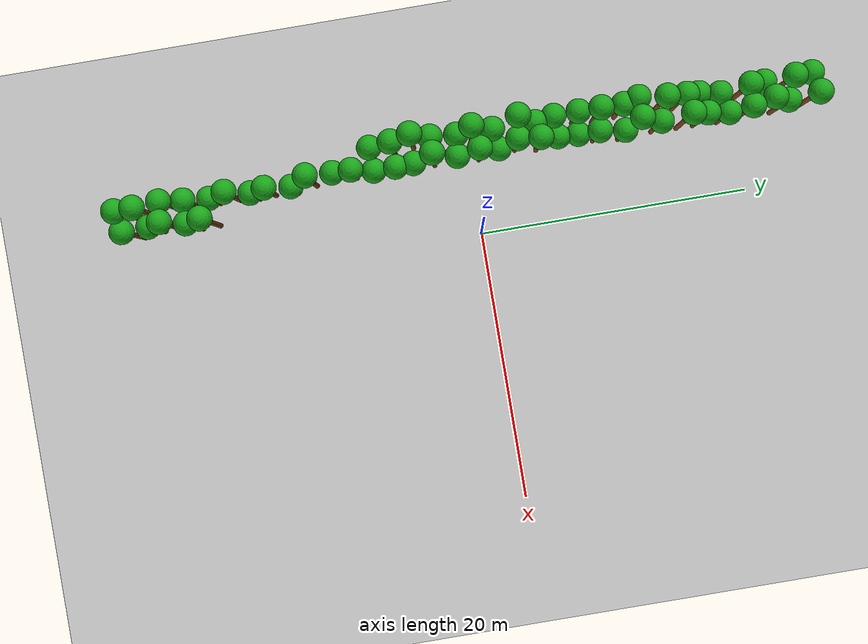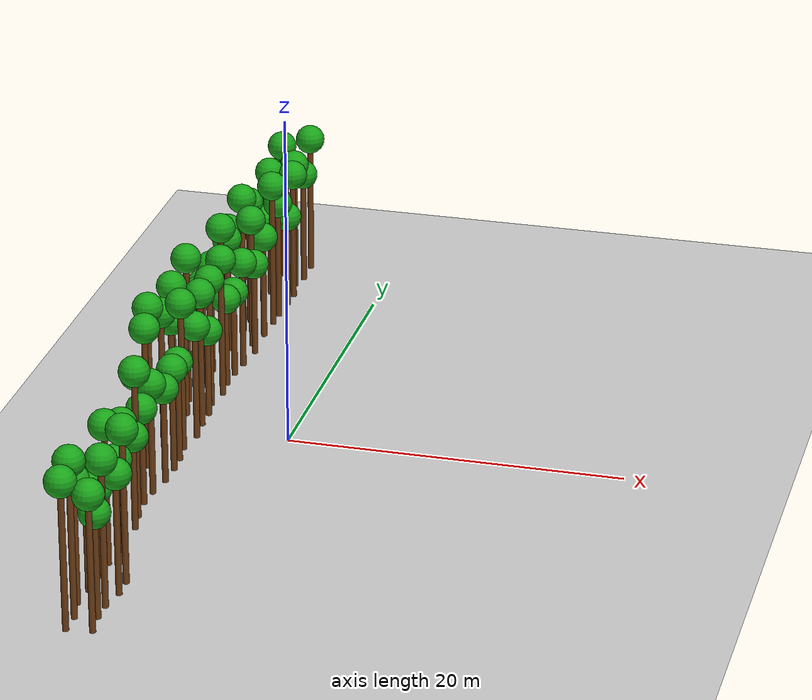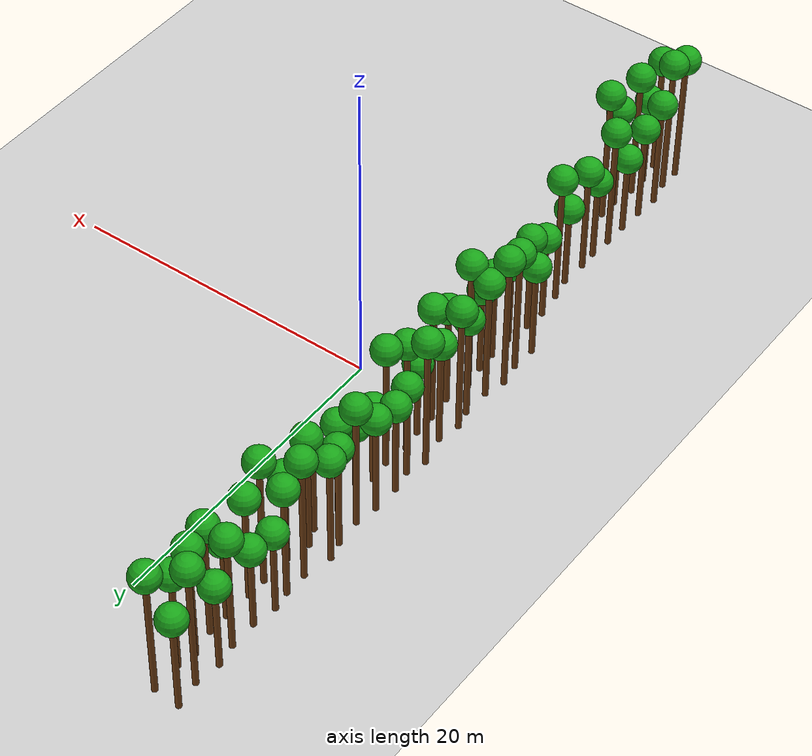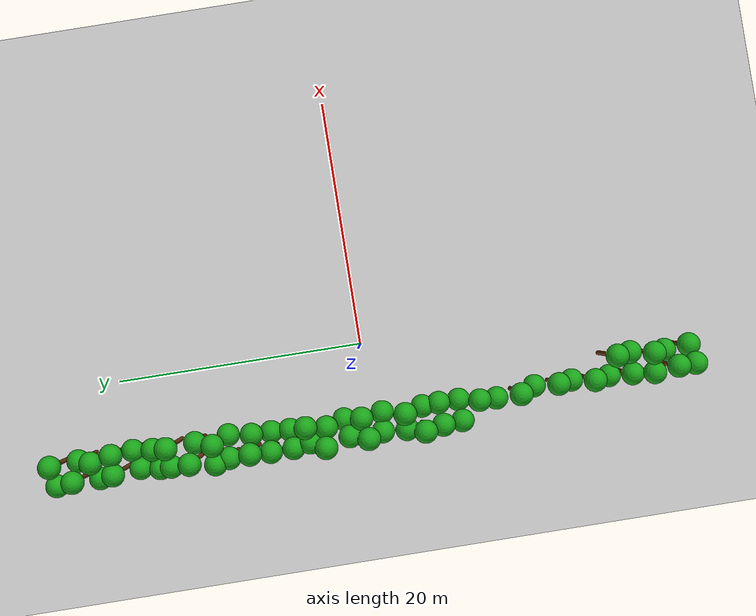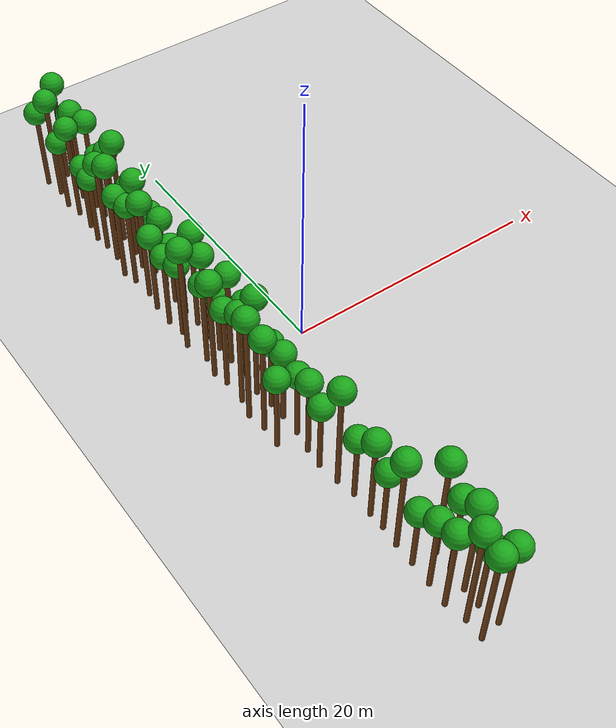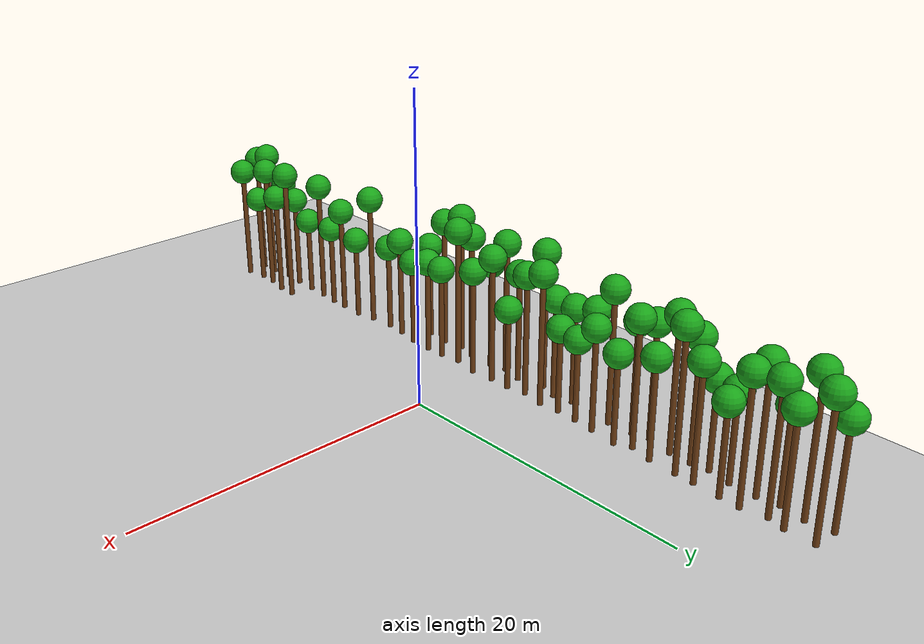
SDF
<sdf version="1.6">
 <world name="forest_world">
  <include><uri>model://sun</uri></include>
  <include><uri>model://ground_plane</uri></include>
  <model name="tree_420">
   <static>true</static>
   <link name="trunk">
    <collision name="collision">
     <pose>-6.99 -6.97 3.08 0 0 0</pose>
     <geometry><cylinder><radius>0.18</radius><length>6.15</length></cylinder></geometry>
    </collision>
    <visual name="trunk_visual">
     <pose>-6.99 -6.97 3.08 0 0 0</pose>
     <geometry><cylinder><radius>0.18</radius><length>6.15</length></cylinder></geometry>
     <material><ambient>0.35 0.20 0.05 1</ambient><diffuse>0.45 0.25 0.08 1</diffuse></material>
    </visual>
    <visual name="leaf_visual">
     <pose>-6.99 -6.97 6.60 0 0 0</pose>
     <geometry><sphere><radius>0.9</radius></sphere></geometry>
     <material><ambient>0.05 0.45 0.05 1</ambient><diffuse>0.10 0.65 0.10 1</diffuse></material>
    </visual>
   </link>
  </model>
  <model name="tree_421">
   <static>true</static>
   <link name="trunk">
    <collision name="collision">
     <pose>-6.91 -5.38 4.17 0 0 0</pose>
     <geometry><cylinder><radius>0.18</radius><length>8.34</length></cylinder></geometry>
    </collision>
    <visual name="trunk_visual">
     <pose>-6.91 -5.38 4.17 0 0 0</pose>
     <geometry><cylinder><radius>0.18</radius><length>8.34</length></cylinder></geometry>
     <material><ambient>0.35 0.20 0.05 1</ambient><diffuse>0.45 0.25 0.08 1</diffuse></material>
    </visual>
    <visual name="leaf_visual">
     <pose>-6.91 -5.38 8.79 0 0 0</pose>
     <geometry><sphere><radius>0.9</radius></sphere></geometry>
     <material><ambient>0.05 0.45 0.05 1</ambient><diffuse>0.10 0.65 0.10 1</diffuse></material>
    </visual>
   </link>
  </model>
  <model name="tree_422">
   <static>true</static>
   <link name="trunk">
    <collision name="collision">
     <pose>-7.15 -3.96 4.49 0 0 0</pose>
     <geometry><cylinder><radius>0.18</radius><length>8.99</length></cylinder></geometry>
    </collision>
    <visual name="trunk_visual">
     <pose>-7.15 -3.96 4.49 0 0 0</pose>
     <geometry><cylinder><radius>0.18</radius><length>8.99</length></cylinder></geometry>
     <material><ambient>0.35 0.20 0.05 1</ambient><diffuse>0.45 0.25 0.08 1</diffuse></material>
    </visual>
    <visual name="leaf_visual">
     <pose>-7.15 -3.96 9.44 0 0 0</pose>
     <geometry><sphere><radius>0.9</radius></sphere></geometry>
     <material><ambient>0.05 0.45 0.05 1</ambient><diffuse>0.10 0.65 0.10 1</diffuse></material>
    </visual>
   </link>
  </model>
  <model name="tree_423">
   <static>true</static>
   <link name="trunk">
    <collision name="collision">
     <pose>-6.81 -2.60 4.06 0 0 0</pose>
     <geometry><cylinder><radius>0.18</radius><length>8.12</length></cylinder></geometry>
    </collision>
    <visual name="trunk_visual">
     <pose>-6.81 -2.60 4.06 0 0 0</pose>
     <geometry><cylinder><radius>0.18</radius><length>8.12</length></cylinder></geometry>
     <material><ambient>0.35 0.20 0.05 1</ambient><diffuse>0.45 0.25 0.08 1</diffuse></material>
    </visual>
    <visual name="leaf_visual">
     <pose>-6.81 -2.60 8.57 0 0 0</pose>
     <geometry><sphere><radius>0.9</radius></sphere></geometry>
     <material><ambient>0.05 0.45 0.05 1</ambient><diffuse>0.10 0.65 0.10 1</diffuse></material>
    </visual>
   </link>
  </model>
  <model name="tree_424">
   <static>true</static>
   <link name="trunk">
    <collision name="collision">
     <pose>-6.80 -0.76 3.42 0 0 0</pose>
     <geometry><cylinder><radius>0.18</radius><length>6.84</length></cylinder></geometry>
    </collision>
    <visual name="trunk_visual">
     <pose>-6.80 -0.76 3.42 0 0 0</pose>
     <geometry><cylinder><radius>0.18</radius><length>6.84</length></cylinder></geometry>
     <material><ambient>0.35 0.20 0.05 1</ambient><diffuse>0.45 0.25 0.08 1</diffuse></material>
    </visual>
    <visual name="leaf_visual">
     <pose>-6.80 -0.76 7.29 0 0 0</pose>
     <geometry><sphere><radius>0.9</radius></sphere></geometry>
     <material><ambient>0.05 0.45 0.05 1</ambient><diffuse>0.10 0.65 0.10 1</diffuse></material>
    </visual>
   </link>
  </model>
  <model name="tree_425">
   <static>true</static>
   <link name="trunk">
    <collision name="collision">
     <pose>-7.07 0.37 4.25 0 0 0</pose>
     <geometry><cylinder><radius>0.18</radius><length>8.49</length></cylinder></geometry>
    </collision>
    <visual name="trunk_visual">
     <pose>-7.07 0.37 4.25 0 0 0</pose>
     <geometry><cylinder><radius>0.18</radius><length>8.49</length></cylinder></geometry>
     <material><ambient>0.35 0.20 0.05 1</ambient><diffuse>0.45 0.25 0.08 1</diffuse></material>
    </visual>
    <visual name="leaf_visual">
     <pose>-7.07 0.37 8.94 0 0 0</pose>
     <geometry><sphere><radius>0.9</radius></sphere></geometry>
     <material><ambient>0.05 0.45 0.05 1</ambient><diffuse>0.10 0.65 0.10 1</diffuse></material>
    </visual>
   </link>
  </model>
  <model name="tree_426">
   <static>true</static>
   <link name="trunk">
    <collision name="collision">
     <pose>-6.77 1.81 3.48 0 0 0</pose>
     <geometry><cylinder><radius>0.18</radius><length>6.97</length></cylinder></geometry>
    </collision>
    <visual name="trunk_visual">
     <pose>-6.77 1.81 3.48 0 0 0</pose>
     <geometry><cylinder><radius>0.18</radius><length>6.97</length></cylinder></geometry>
     <material><ambient>0.35 0.20 0.05 1</ambient><diffuse>0.45 0.25 0.08 1</diffuse></material>
    </visual>
    <visual name="leaf_visual">
     <pose>-6.77 1.81 7.42 0 0 0</pose>
     <geometry><sphere><radius>0.9</radius></sphere></geometry>
     <material><ambient>0.05 0.45 0.05 1</ambient><diffuse>0.10 0.65 0.10 1</diffuse></material>
    </visual>
   </link>
  </model>
  <model name="tree_427">
   <static>true</static>
   <link name="trunk">
    <collision name="collision">
     <pose>-7.20 3.66 4.42 0 0 0</pose>
     <geometry><cylinder><radius>0.18</radius><length>8.84</length></cylinder></geometry>
    </collision>
    <visual name="trunk_visual">
     <pose>-7.20 3.66 4.42 0 0 0</pose>
     <geometry><cylinder><radius>0.18</radius><length>8.84</length></cylinder></geometry>
     <material><ambient>0.35 0.20 0.05 1</ambient><diffuse>0.45 0.25 0.08 1</diffuse></material>
    </visual>
    <visual name="leaf_visual">
     <pose>-7.20 3.66 9.29 0 0 0</pose>
     <geometry><sphere><radius>0.9</radius></sphere></geometry>
     <material><ambient>0.05 0.45 0.05 1</ambient><diffuse>0.10 0.65 0.10 1</diffuse></material>
    </visual>
   </link>
  </model>
  <model name="tree_428">
   <static>true</static>
   <link name="trunk">
    <collision name="collision">
     <pose>-6.82 4.91 3.13 0 0 0</pose>
     <geometry><cylinder><radius>0.18</radius><length>6.25</length></cylinder></geometry>
    </collision>
    <visual name="trunk_visual">
     <pose>-6.82 4.91 3.13 0 0 0</pose>
     <geometry><cylinder><radius>0.18</radius><length>6.25</length></cylinder></geometry>
     <material><ambient>0.35 0.20 0.05 1</ambient><diffuse>0.45 0.25 0.08 1</diffuse></material>
    </visual>
    <visual name="leaf_visual">
     <pose>-6.82 4.91 6.70 0 0 0</pose>
     <geometry><sphere><radius>0.9</radius></sphere></geometry>
     <material><ambient>0.05 0.45 0.05 1</ambient><diffuse>0.10 0.65 0.10 1</diffuse></material>
    </visual>
   </link>
  </model>
  <model name="tree_429">
   <static>true</static>
   <link name="trunk">
    <collision name="collision">
     <pose>-7.06 6.28 3.04 0 0 0</pose>
     <geometry><cylinder><radius>0.18</radius><length>6.08</length></cylinder></geometry>
    </collision>
    <visual name="trunk_visual">
     <pose>-7.06 6.28 3.04 0 0 0</pose>
     <geometry><cylinder><radius>0.18</radius><length>6.08</length></cylinder></geometry>
     <material><ambient>0.35 0.20 0.05 1</ambient><diffuse>0.45 0.25 0.08 1</diffuse></material>
    </visual>
    <visual name="leaf_visual">
     <pose>-7.06 6.28 6.53 0 0 0</pose>
     <geometry><sphere><radius>0.9</radius></sphere></geometry>
     <material><ambient>0.05 0.45 0.05 1</ambient><diffuse>0.10 0.65 0.10 1</diffuse></material>
    </visual>
   </link>
  </model>
  <model name="tree_430">
   <static>true</static>
   <link name="trunk">
    <collision name="collision">
     <pose>-7.03 8.02 3.27 0 0 0</pose>
     <geometry><cylinder><radius>0.18</radius><length>6.54</length></cylinder></geometry>
    </collision>
    <visual name="trunk_visual">
     <pose>-7.03 8.02 3.27 0 0 0</pose>
     <geometry><cylinder><radius>0.18</radius><length>6.54</length></cylinder></geometry>
     <material><ambient>0.35 0.20 0.05 1</ambient><diffuse>0.45 0.25 0.08 1</diffuse></material>
    </visual>
    <visual name="leaf_visual">
     <pose>-7.03 8.02 6.99 0 0 0</pose>
     <geometry><sphere><radius>0.9</radius></sphere></geometry>
     <material><ambient>0.05 0.45 0.05 1</ambient><diffuse>0.10 0.65 0.10 1</diffuse></material>
    </visual>
   </link>
  </model>
  <model name="tree_431">
   <static>true</static>
   <link name="trunk">
    <collision name="collision">
     <pose>-6.81 9.47 4.21 0 0 0</pose>
     <geometry><cylinder><radius>0.18</radius><length>8.41</length></cylinder></geometry>
    </collision>
    <visual name="trunk_visual">
     <pose>-6.81 9.47 4.21 0 0 0</pose>
     <geometry><cylinder><radius>0.18</radius><length>8.41</length></cylinder></geometry>
     <material><ambient>0.35 0.20 0.05 1</ambient><diffuse>0.45 0.25 0.08 1</diffuse></material>
    </visual>
    <visual name="leaf_visual">
     <pose>-6.81 9.47 8.86 0 0 0</pose>
     <geometry><sphere><radius>0.9</radius></sphere></geometry>
     <material><ambient>0.05 0.45 0.05 1</ambient><diffuse>0.10 0.65 0.10 1</diffuse></material>
    </visual>
   </link>
  </model>
  <model name="tree_432">
   <static>true</static>
   <link name="trunk">
    <collision name="collision">
     <pose>-6.95 11.20 3.48 0 0 0</pose>
     <geometry><cylinder><radius>0.18</radius><length>6.97</length></cylinder></geometry>
    </collision>
    <visual name="trunk_visual">
     <pose>-6.95 11.20 3.48 0 0 0</pose>
     <geometry><cylinder><radius>0.18</radius><length>6.97</length></cylinder></geometry>
     <material><ambient>0.35 0.20 0.05 1</ambient><diffuse>0.45 0.25 0.08 1</diffuse></material>
    </visual>
    <visual name="leaf_visual">
     <pose>-6.95 11.20 7.42 0 0 0</pose>
     <geometry><sphere><radius>0.9</radius></sphere></geometry>
     <material><ambient>0.05 0.45 0.05 1</ambient><diffuse>0.10 0.65 0.10 1</diffuse></material>
    </visual>
   </link>
  </model>
  <model name="tree_433">
   <static>true</static>
   <link name="trunk">
    <collision name="collision">
     <pose>-7.24 12.29 3.59 0 0 0</pose>
     <geometry><cylinder><radius>0.18</radius><length>7.19</length></cylinder></geometry>
    </collision>
    <visual name="trunk_visual">
     <pose>-7.24 12.29 3.59 0 0 0</pose>
     <geometry><cylinder><radius>0.18</radius><length>7.19</length></cylinder></geometry>
     <material><ambient>0.35 0.20 0.05 1</ambient><diffuse>0.45 0.25 0.08 1</diffuse></material>
    </visual>
    <visual name="leaf_visual">
     <pose>-7.24 12.29 7.64 0 0 0</pose>
     <geometry><sphere><radius>0.9</radius></sphere></geometry>
     <material><ambient>0.05 0.45 0.05 1</ambient><diffuse>0.10 0.65 0.10 1</diffuse></material>
    </visual>
   </link>
  </model>
  <model name="tree_434">
   <static>true</static>
   <link name="trunk">
    <collision name="collision">
     <pose>-6.84 14.10 4.23 0 0 0</pose>
     <geometry><cylinder><radius>0.18</radius><length>8.46</length></cylinder></geometry>
    </collision>
    <visual name="trunk_visual">
     <pose>-6.84 14.10 4.23 0 0 0</pose>
     <geometry><cylinder><radius>0.18</radius><length>8.46</length></cylinder></geometry>
     <material><ambient>0.35 0.20 0.05 1</ambient><diffuse>0.45 0.25 0.08 1</diffuse></material>
    </visual>
    <visual name="leaf_visual">
     <pose>-6.84 14.10 8.91 0 0 0</pose>
     <geometry><sphere><radius>0.9</radius></sphere></geometry>
     <material><ambient>0.05 0.45 0.05 1</ambient><diffuse>0.10 0.65 0.10 1</diffuse></material>
    </visual>
   </link>
  </model>
  <model name="tree_435">
   <static>true</static>
   <link name="trunk">
    <collision name="collision">
     <pose>-6.84 15.59 3.82 0 0 0</pose>
     <geometry><cylinder><radius>0.18</radius><length>7.64</length></cylinder></geometry>
    </collision>
    <visual name="trunk_visual">
     <pose>-6.84 15.59 3.82 0 0 0</pose>
     <geometry><cylinder><radius>0.18</radius><length>7.64</length></cylinder></geometry>
     <material><ambient>0.35 0.20 0.05 1</ambient><diffuse>0.45 0.25 0.08 1</diffuse></material>
    </visual>
    <visual name="leaf_visual">
     <pose>-6.84 15.59 8.09 0 0 0</pose>
     <geometry><sphere><radius>0.9</radius></sphere></geometry>
     <material><ambient>0.05 0.45 0.05 1</ambient><diffuse>0.10 0.65 0.10 1</diffuse></material>
    </visual>
   </link>
  </model>
  <model name="tree_436">
   <static>true</static>
   <link name="trunk">
    <collision name="collision">
     <pose>-7.01 16.77 2.76 0 0 0</pose>
     <geometry><cylinder><radius>0.18</radius><length>5.52</length></cylinder></geometry>
    </collision>
    <visual name="trunk_visual">
     <pose>-7.01 16.77 2.76 0 0 0</pose>
     <geometry><cylinder><radius>0.18</radius><length>5.52</length></cylinder></geometry>
     <material><ambient>0.35 0.20 0.05 1</ambient><diffuse>0.45 0.25 0.08 1</diffuse></material>
    </visual>
    <visual name="leaf_visual">
     <pose>-7.01 16.77 5.97 0 0 0</pose>
     <geometry><sphere><radius>0.9</radius></sphere></geometry>
     <material><ambient>0.05 0.45 0.05 1</ambient><diffuse>0.10 0.65 0.10 1</diffuse></material>
    </visual>
   </link>
  </model>
  <model name="tree_437">
   <static>true</static>
   <link name="trunk">
    <collision name="collision">
     <pose>-6.76 18.30 2.73 0 0 0</pose>
     <geometry><cylinder><radius>0.18</radius><length>5.46</length></cylinder></geometry>
    </collision>
    <visual name="trunk_visual">
     <pose>-6.76 18.30 2.73 0 0 0</pose>
     <geometry><cylinder><radius>0.18</radius><length>5.46</length></cylinder></geometry>
     <material><ambient>0.35 0.20 0.05 1</ambient><diffuse>0.45 0.25 0.08 1</diffuse></material>
    </visual>
    <visual name="leaf_visual">
     <pose>-6.76 18.30 5.91 0 0 0</pose>
     <geometry><sphere><radius>0.9</radius></sphere></geometry>
     <material><ambient>0.05 0.45 0.05 1</ambient><diffuse>0.10 0.65 0.10 1</diffuse></material>
    </visual>
   </link>
  </model>
  <model name="tree_438">
   <static>true</static>
   <link name="trunk">
    <collision name="collision">
     <pose>-6.77 20.06 3.93 0 0 0</pose>
     <geometry><cylinder><radius>0.18</radius><length>7.86</length></cylinder></geometry>
    </collision>
    <visual name="trunk_visual">
     <pose>-6.77 20.06 3.93 0 0 0</pose>
     <geometry><cylinder><radius>0.18</radius><length>7.86</length></cylinder></geometry>
     <material><ambient>0.35 0.20 0.05 1</ambient><diffuse>0.45 0.25 0.08 1</diffuse></material>
    </visual>
    <visual name="leaf_visual">
     <pose>-6.77 20.06 8.31 0 0 0</pose>
     <geometry><sphere><radius>0.9</radius></sphere></geometry>
     <material><ambient>0.05 0.45 0.05 1</ambient><diffuse>0.10 0.65 0.10 1</diffuse></material>
    </visual>
   </link>
  </model>
  <model name="tree_439">
   <static>true</static>
   <link name="trunk">
    <collision name="collision">
     <pose>-7.02 21.43 2.89 0 0 0</pose>
     <geometry><cylinder><radius>0.18</radius><length>5.79</length></cylinder></geometry>
    </collision>
    <visual name="trunk_visual">
     <pose>-7.02 21.43 2.89 0 0 0</pose>
     <geometry><cylinder><radius>0.18</radius><length>5.79</length></cylinder></geometry>
     <material><ambient>0.35 0.20 0.05 1</ambient><diffuse>0.45 0.25 0.08 1</diffuse></material>
    </visual>
    <visual name="leaf_visual">
     <pose>-7.02 21.43 6.24 0 0 0</pose>
     <geometry><sphere><radius>0.9</radius></sphere></geometry>
     <material><ambient>0.05 0.45 0.05 1</ambient><diffuse>0.10 0.65 0.10 1</diffuse></material>
    </visual>
   </link>
  </model>
  <model name="tree_440">
   <static>true</static>
   <link name="trunk">
    <collision name="collision">
     <pose>-6.79 23.06 4.23 0 0 0</pose>
     <geometry><cylinder><radius>0.18</radius><length>8.46</length></cylinder></geometry>
    </collision>
    <visual name="trunk_visual">
     <pose>-6.79 23.06 4.23 0 0 0</pose>
     <geometry><cylinder><radius>0.18</radius><length>8.46</length></cylinder></geometry>
     <material><ambient>0.35 0.20 0.05 1</ambient><diffuse>0.45 0.25 0.08 1</diffuse></material>
    </visual>
    <visual name="leaf_visual">
     <pose>-6.79 23.06 8.91 0 0 0</pose>
     <geometry><sphere><radius>0.9</radius></sphere></geometry>
     <material><ambient>0.05 0.45 0.05 1</ambient><diffuse>0.10 0.65 0.10 1</diffuse></material>
    </visual>
   </link>
  </model>
  <model name="tree_441">
   <static>true</static>
   <link name="trunk">
    <collision name="collision">
     <pose>-7.03 24.71 3.21 0 0 0</pose>
     <geometry><cylinder><radius>0.18</radius><length>6.42</length></cylinder></geometry>
    </collision>
    <visual name="trunk_visual">
     <pose>-7.03 24.71 3.21 0 0 0</pose>
     <geometry><cylinder><radius>0.18</radius><length>6.42</length></cylinder></geometry>
     <material><ambient>0.35 0.20 0.05 1</ambient><diffuse>0.45 0.25 0.08 1</diffuse></material>
    </visual>
    <visual name="leaf_visual">
     <pose>-7.03 24.71 6.87 0 0 0</pose>
     <geometry><sphere><radius>0.9</radius></sphere></geometry>
     <material><ambient>0.05 0.45 0.05 1</ambient><diffuse>0.10 0.65 0.10 1</diffuse></material>
    </visual>
   </link>
  </model>
  <model name="tree_442">
   <static>true</static>
   <link name="trunk">
    <collision name="collision">
     <pose>-5.30 -25.02 4.20 0 0 0</pose>
     <geometry><cylinder><radius>0.18</radius><length>8.41</length></cylinder></geometry>
    </collision>
    <visual name="trunk_visual">
     <pose>-5.30 -25.02 4.20 0 0 0</pose>
     <geometry><cylinder><radius>0.18</radius><length>8.41</length></cylinder></geometry>
     <material><ambient>0.35 0.20 0.05 1</ambient><diffuse>0.45 0.25 0.08 1</diffuse></material>
    </visual>
    <visual name="leaf_visual">
     <pose>-5.30 -25.02 8.86 0 0 0</pose>
     <geometry><sphere><radius>0.9</radius></sphere></geometry>
     <material><ambient>0.05 0.45 0.05 1</ambient><diffuse>0.10 0.65 0.10 1</diffuse></material>
    </visual>
   </link>
  </model>
  <model name="tree_443">
   <static>true</static>
   <link name="trunk">
    <collision name="collision">
     <pose>-5.28 -23.63 4.47 0 0 0</pose>
     <geometry><cylinder><radius>0.18</radius><length>8.94</length></cylinder></geometry>
    </collision>
    <visual name="trunk_visual">
     <pose>-5.28 -23.63 4.47 0 0 0</pose>
     <geometry><cylinder><radius>0.18</radius><length>8.94</length></cylinder></geometry>
     <material><ambient>0.35 0.20 0.05 1</ambient><diffuse>0.45 0.25 0.08 1</diffuse></material>
    </visual>
    <visual name="leaf_visual">
     <pose>-5.28 -23.63 9.39 0 0 0</pose>
     <geometry><sphere><radius>0.9</radius></sphere></geometry>
     <material><ambient>0.05 0.45 0.05 1</ambient><diffuse>0.10 0.65 0.10 1</diffuse></material>
    </visual>
   </link>
  </model>
  <model name="tree_444">
   <static>true</static>
   <link name="trunk">
    <collision name="collision">
     <pose>-5.61 -22.11 3.53 0 0 0</pose>
     <geometry><cylinder><radius>0.18</radius><length>7.06</length></cylinder></geometry>
    </collision>
    <visual name="trunk_visual">
     <pose>-5.61 -22.11 3.53 0 0 0</pose>
     <geometry><cylinder><radius>0.18</radius><length>7.06</length></cylinder></geometry>
     <material><ambient>0.35 0.20 0.05 1</ambient><diffuse>0.45 0.25 0.08 1</diffuse></material>
    </visual>
    <visual name="leaf_visual">
     <pose>-5.61 -22.11 7.51 0 0 0</pose>
     <geometry><sphere><radius>0.9</radius></sphere></geometry>
     <material><ambient>0.05 0.45 0.05 1</ambient><diffuse>0.10 0.65 0.10 1</diffuse></material>
    </visual>
   </link>
  </model>
  <model name="tree_445">
   <static>true</static>
   <link name="trunk">
    <collision name="collision">
     <pose>-5.49 -20.55 3.10 0 0 0</pose>
     <geometry><cylinder><radius>0.18</radius><length>6.21</length></cylinder></geometry>
    </collision>
    <visual name="trunk_visual">
     <pose>-5.49 -20.55 3.10 0 0 0</pose>
     <geometry><cylinder><radius>0.18</radius><length>6.21</length></cylinder></geometry>
     <material><ambient>0.35 0.20 0.05 1</ambient><diffuse>0.45 0.25 0.08 1</diffuse></material>
    </visual>
    <visual name="leaf_visual">
     <pose>-5.49 -20.55 6.66 0 0 0</pose>
     <geometry><sphere><radius>0.9</radius></sphere></geometry>
     <material><ambient>0.05 0.45 0.05 1</ambient><diffuse>0.10 0.65 0.10 1</diffuse></material>
    </visual>
   </link>
  </model>
  <model name="tree_446">
   <static>true</static>
   <link name="trunk">
    <collision name="collision">
     <pose>-5.43 -18.89 2.52 0 0 0</pose>
     <geometry><cylinder><radius>0.18</radius><length>5.04</length></cylinder></geometry>
    </collision>
    <visual name="trunk_visual">
     <pose>-5.43 -18.89 2.52 0 0 0</pose>
     <geometry><cylinder><radius>0.18</radius><length>5.04</length></cylinder></geometry>
     <material><ambient>0.35 0.20 0.05 1</ambient><diffuse>0.45 0.25 0.08 1</diffuse></material>
    </visual>
    <visual name="leaf_visual">
     <pose>-5.43 -18.89 5.49 0 0 0</pose>
     <geometry><sphere><radius>0.9</radius></sphere></geometry>
     <material><ambient>0.05 0.45 0.05 1</ambient><diffuse>0.10 0.65 0.10 1</diffuse></material>
    </visual>
   </link>
  </model>
  <model name="tree_447">
   <static>true</static>
   <link name="trunk">
    <collision name="collision">
     <pose>-5.41 -17.34 4.04 0 0 0</pose>
     <geometry><cylinder><radius>0.18</radius><length>8.08</length></cylinder></geometry>
    </collision>
    <visual name="trunk_visual">
     <pose>-5.41 -17.34 4.04 0 0 0</pose>
     <geometry><cylinder><radius>0.18</radius><length>8.08</length></cylinder></geometry>
     <material><ambient>0.35 0.20 0.05 1</ambient><diffuse>0.45 0.25 0.08 1</diffuse></material>
    </visual>
    <visual name="leaf_visual">
     <pose>-5.41 -17.34 8.53 0 0 0</pose>
     <geometry><sphere><radius>0.9</radius></sphere></geometry>
     <material><ambient>0.05 0.45 0.05 1</ambient><diffuse>0.10 0.65 0.10 1</diffuse></material>
    </visual>
   </link>
  </model>
  <model name="tree_448">
   <static>true</static>
   <link name="trunk">
    <collision name="collision">
     <pose>-5.29 -15.89 2.65 0 0 0</pose>
     <geometry><cylinder><radius>0.18</radius><length>5.30</length></cylinder></geometry>
    </collision>
    <visual name="trunk_visual">
     <pose>-5.29 -15.89 2.65 0 0 0</pose>
     <geometry><cylinder><radius>0.18</radius><length>5.30</length></cylinder></geometry>
     <material><ambient>0.35 0.20 0.05 1</ambient><diffuse>0.45 0.25 0.08 1</diffuse></material>
    </visual>
    <visual name="leaf_visual">
     <pose>-5.29 -15.89 5.75 0 0 0</pose>
     <geometry><sphere><radius>0.9</radius></sphere></geometry>
     <material><ambient>0.05 0.45 0.05 1</ambient><diffuse>0.10 0.65 0.10 1</diffuse></material>
    </visual>
   </link>
  </model>
  <model name="tree_449">
   <static>true</static>
   <link name="trunk">
    <collision name="collision">
     <pose>-5.34 -14.68 3.47 0 0 0</pose>
     <geometry><cylinder><radius>0.18</radius><length>6.94</length></cylinder></geometry>
    </collision>
    <visual name="trunk_visual">
     <pose>-5.34 -14.68 3.47 0 0 0</pose>
     <geometry><cylinder><radius>0.18</radius><length>6.94</length></cylinder></geometry>
     <material><ambient>0.35 0.20 0.05 1</ambient><diffuse>0.45 0.25 0.08 1</diffuse></material>
    </visual>
    <visual name="leaf_visual">
     <pose>-5.34 -14.68 7.39 0 0 0</pose>
     <geometry><sphere><radius>0.9</radius></sphere></geometry>
     <material><ambient>0.05 0.45 0.05 1</ambient><diffuse>0.10 0.65 0.10 1</diffuse></material>
    </visual>
   </link>
  </model>
  <model name="tree_450">
   <static>true</static>
   <link name="trunk">
    <collision name="collision">
     <pose>-5.27 -12.94 2.65 0 0 0</pose>
     <geometry><cylinder><radius>0.18</radius><length>5.29</length></cylinder></geometry>
    </collision>
    <visual name="trunk_visual">
     <pose>-5.27 -12.94 2.65 0 0 0</pose>
     <geometry><cylinder><radius>0.18</radius><length>5.29</length></cylinder></geometry>
     <material><ambient>0.35 0.20 0.05 1</ambient><diffuse>0.45 0.25 0.08 1</diffuse></material>
    </visual>
    <visual name="leaf_visual">
     <pose>-5.27 -12.94 5.74 0 0 0</pose>
     <geometry><sphere><radius>0.9</radius></sphere></geometry>
     <material><ambient>0.05 0.45 0.05 1</ambient><diffuse>0.10 0.65 0.10 1</diffuse></material>
    </visual>
   </link>
  </model>
  <model name="tree_451">
   <static>true</static>
   <link name="trunk">
    <collision name="collision">
     <pose>-5.54 -11.55 4.31 0 0 0</pose>
     <geometry><cylinder><radius>0.18</radius><length>8.61</length></cylinder></geometry>
    </collision>
    <visual name="trunk_visual">
     <pose>-5.54 -11.55 4.31 0 0 0</pose>
     <geometry><cylinder><radius>0.18</radius><length>8.61</length></cylinder></geometry>
     <material><ambient>0.35 0.20 0.05 1</ambient><diffuse>0.45 0.25 0.08 1</diffuse></material>
    </visual>
    <visual name="leaf_visual">
     <pose>-5.54 -11.55 9.06 0 0 0</pose>
     <geometry><sphere><radius>0.9</radius></sphere></geometry>
     <material><ambient>0.05 0.45 0.05 1</ambient><diffuse>0.10 0.65 0.10 1</diffuse></material>
    </visual>
   </link>
  </model>
  <model name="tree_452">
   <static>true</static>
   <link name="trunk">
    <collision name="collision">
     <pose>-5.73 -9.88 2.76 0 0 0</pose>
     <geometry><cylinder><radius>0.18</radius><length>5.52</length></cylinder></geometry>
    </collision>
    <visual name="trunk_visual">
     <pose>-5.73 -9.88 2.76 0 0 0</pose>
     <geometry><cylinder><radius>0.18</radius><length>5.52</length></cylinder></geometry>
     <material><ambient>0.35 0.20 0.05 1</ambient><diffuse>0.45 0.25 0.08 1</diffuse></material>
    </visual>
    <visual name="leaf_visual">
     <pose>-5.73 -9.88 5.97 0 0 0</pose>
     <geometry><sphere><radius>0.9</radius></sphere></geometry>
     <material><ambient>0.05 0.45 0.05 1</ambient><diffuse>0.10 0.65 0.10 1</diffuse></material>
    </visual>
   </link>
  </model>
  <model name="tree_453">
   <static>true</static>
   <link name="trunk">
    <collision name="collision">
     <pose>-5.63 -8.49 3.21 0 0 0</pose>
     <geometry><cylinder><radius>0.18</radius><length>6.42</length></cylinder></geometry>
    </collision>
    <visual name="trunk_visual">
     <pose>-5.63 -8.49 3.21 0 0 0</pose>
     <geometry><cylinder><radius>0.18</radius><length>6.42</length></cylinder></geometry>
     <material><ambient>0.35 0.20 0.05 1</ambient><diffuse>0.45 0.25 0.08 1</diffuse></material>
    </visual>
    <visual name="leaf_visual">
     <pose>-5.63 -8.49 6.87 0 0 0</pose>
     <geometry><sphere><radius>0.9</radius></sphere></geometry>
     <material><ambient>0.05 0.45 0.05 1</ambient><diffuse>0.10 0.65 0.10 1</diffuse></material>
    </visual>
   </link>
  </model>
  <model name="tree_454">
   <static>true</static>
   <link name="trunk">
    <collision name="collision">
     <pose>-5.38 -6.92 2.72 0 0 0</pose>
     <geometry><cylinder><radius>0.18</radius><length>5.44</length></cylinder></geometry>
    </collision>
    <visual name="trunk_visual">
     <pose>-5.38 -6.92 2.72 0 0 0</pose>
     <geometry><cylinder><radius>0.18</radius><length>5.44</length></cylinder></geometry>
     <material><ambient>0.35 0.20 0.05 1</ambient><diffuse>0.45 0.25 0.08 1</diffuse></material>
    </visual>
    <visual name="leaf_visual">
     <pose>-5.38 -6.92 5.89 0 0 0</pose>
     <geometry><sphere><radius>0.9</radius></sphere></geometry>
     <material><ambient>0.05 0.45 0.05 1</ambient><diffuse>0.10 0.65 0.10 1</diffuse></material>
    </visual>
   </link>
  </model>
  <model name="tree_455">
   <static>true</static>
   <link name="trunk">
    <collision name="collision">
     <pose>-5.35 -5.33 2.97 0 0 0</pose>
     <geometry><cylinder><radius>0.18</radius><length>5.94</length></cylinder></geometry>
    </collision>
    <visual name="trunk_visual">
     <pose>-5.35 -5.33 2.97 0 0 0</pose>
     <geometry><cylinder><radius>0.18</radius><length>5.94</length></cylinder></geometry>
     <material><ambient>0.35 0.20 0.05 1</ambient><diffuse>0.45 0.25 0.08 1</diffuse></material>
    </visual>
    <visual name="leaf_visual">
     <pose>-5.35 -5.33 6.39 0 0 0</pose>
     <geometry><sphere><radius>0.9</radius></sphere></geometry>
     <material><ambient>0.05 0.45 0.05 1</ambient><diffuse>0.10 0.65 0.10 1</diffuse></material>
    </visual>
   </link>
  </model>
  <model name="tree_456">
   <static>true</static>
   <link name="trunk">
    <collision name="collision">
     <pose>-5.41 -4.04 2.90 0 0 0</pose>
     <geometry><cylinder><radius>0.18</radius><length>5.80</length></cylinder></geometry>
    </collision>
    <visual name="trunk_visual">
     <pose>-5.41 -4.04 2.90 0 0 0</pose>
     <geometry><cylinder><radius>0.18</radius><length>5.80</length></cylinder></geometry>
     <material><ambient>0.35 0.20 0.05 1</ambient><diffuse>0.45 0.25 0.08 1</diffuse></material>
    </visual>
    <visual name="leaf_visual">
     <pose>-5.41 -4.04 6.25 0 0 0</pose>
     <geometry><sphere><radius>0.9</radius></sphere></geometry>
     <material><ambient>0.05 0.45 0.05 1</ambient><diffuse>0.10 0.65 0.10 1</diffuse></material>
    </visual>
   </link>
  </model>
  <model name="tree_457">
   <static>true</static>
   <link name="trunk">
    <collision name="collision">
     <pose>-5.61 -2.61 4.42 0 0 0</pose>
     <geometry><cylinder><radius>0.18</radius><length>8.84</length></cylinder></geometry>
    </collision>
    <visual name="trunk_visual">
     <pose>-5.61 -2.61 4.42 0 0 0</pose>
     <geometry><cylinder><radius>0.18</radius><length>8.84</length></cylinder></geometry>
     <material><ambient>0.35 0.20 0.05 1</ambient><diffuse>0.45 0.25 0.08 1</diffuse></material>
    </visual>
    <visual name="leaf_visual">
     <pose>-5.61 -2.61 9.29 0 0 0</pose>
     <geometry><sphere><radius>0.9</radius></sphere></geometry>
     <material><ambient>0.05 0.45 0.05 1</ambient><diffuse>0.10 0.65 0.10 1</diffuse></material>
    </visual>
   </link>
  </model>
  <model name="tree_458">
   <static>true</static>
   <link name="trunk">
    <collision name="collision">
     <pose>-5.32 -0.90 3.34 0 0 0</pose>
     <geometry><cylinder><radius>0.18</radius><length>6.68</length></cylinder></geometry>
    </collision>
    <visual name="trunk_visual">
     <pose>-5.32 -0.90 3.34 0 0 0</pose>
     <geometry><cylinder><radius>0.18</radius><length>6.68</length></cylinder></geometry>
     <material><ambient>0.35 0.20 0.05 1</ambient><diffuse>0.45 0.25 0.08 1</diffuse></material>
    </visual>
    <visual name="leaf_visual">
     <pose>-5.32 -0.90 7.13 0 0 0</pose>
     <geometry><sphere><radius>0.9</radius></sphere></geometry>
     <material><ambient>0.05 0.45 0.05 1</ambient><diffuse>0.10 0.65 0.10 1</diffuse></material>
    </visual>
   </link>
  </model>
  <model name="tree_459">
   <static>true</static>
   <link name="trunk">
    <collision name="collision">
     <pose>-5.48 0.72 4.02 0 0 0</pose>
     <geometry><cylinder><radius>0.18</radius><length>8.04</length></cylinder></geometry>
    </collision>
    <visual name="trunk_visual">
     <pose>-5.48 0.72 4.02 0 0 0</pose>
     <geometry><cylinder><radius>0.18</radius><length>8.04</length></cylinder></geometry>
     <material><ambient>0.35 0.20 0.05 1</ambient><diffuse>0.45 0.25 0.08 1</diffuse></material>
    </visual>
    <visual name="leaf_visual">
     <pose>-5.48 0.72 8.49 0 0 0</pose>
     <geometry><sphere><radius>0.9</radius></sphere></geometry>
     <material><ambient>0.05 0.45 0.05 1</ambient><diffuse>0.10 0.65 0.10 1</diffuse></material>
    </visual>
   </link>
  </model>
  <model name="tree_460">
   <static>true</static>
   <link name="trunk">
    <collision name="collision">
     <pose>-5.50 2.14 2.51 0 0 0</pose>
     <geometry><cylinder><radius>0.18</radius><length>5.02</length></cylinder></geometry>
    </collision>
    <visual name="trunk_visual">
     <pose>-5.50 2.14 2.51 0 0 0</pose>
     <geometry><cylinder><radius>0.18</radius><length>5.02</length></cylinder></geometry>
     <material><ambient>0.35 0.20 0.05 1</ambient><diffuse>0.45 0.25 0.08 1</diffuse></material>
    </visual>
    <visual name="leaf_visual">
     <pose>-5.50 2.14 5.47 0 0 0</pose>
     <geometry><sphere><radius>0.9</radius></sphere></geometry>
     <material><ambient>0.05 0.45 0.05 1</ambient><diffuse>0.10 0.65 0.10 1</diffuse></material>
    </visual>
   </link>
  </model>
  <model name="tree_461">
   <static>true</static>
   <link name="trunk">
    <collision name="collision">
     <pose>-5.74 3.48 3.85 0 0 0</pose>
     <geometry><cylinder><radius>0.18</radius><length>7.69</length></cylinder></geometry>
    </collision>
    <visual name="trunk_visual">
     <pose>-5.74 3.48 3.85 0 0 0</pose>
     <geometry><cylinder><radius>0.18</radius><length>7.69</length></cylinder></geometry>
     <material><ambient>0.35 0.20 0.05 1</ambient><diffuse>0.45 0.25 0.08 1</diffuse></material>
    </visual>
    <visual name="leaf_visual">
     <pose>-5.74 3.48 8.14 0 0 0</pose>
     <geometry><sphere><radius>0.9</radius></sphere></geometry>
     <material><ambient>0.05 0.45 0.05 1</ambient><diffuse>0.10 0.65 0.10 1</diffuse></material>
    </visual>
   </link>
  </model>
  <model name="tree_462">
   <static>true</static>
   <link name="trunk">
    <collision name="collision">
     <pose>-5.49 5.03 4.18 0 0 0</pose>
     <geometry><cylinder><radius>0.18</radius><length>8.36</length></cylinder></geometry>
    </collision>
    <visual name="trunk_visual">
     <pose>-5.49 5.03 4.18 0 0 0</pose>
     <geometry><cylinder><radius>0.18</radius><length>8.36</length></cylinder></geometry>
     <material><ambient>0.35 0.20 0.05 1</ambient><diffuse>0.45 0.25 0.08 1</diffuse></material>
    </visual>
    <visual name="leaf_visual">
     <pose>-5.49 5.03 8.81 0 0 0</pose>
     <geometry><sphere><radius>0.9</radius></sphere></geometry>
     <material><ambient>0.05 0.45 0.05 1</ambient><diffuse>0.10 0.65 0.10 1</diffuse></material>
    </visual>
   </link>
  </model>
  <model name="tree_463">
   <static>true</static>
   <link name="trunk">
    <collision name="collision">
     <pose>-5.64 6.42 2.60 0 0 0</pose>
     <geometry><cylinder><radius>0.18</radius><length>5.20</length></cylinder></geometry>
    </collision>
    <visual name="trunk_visual">
     <pose>-5.64 6.42 2.60 0 0 0</pose>
     <geometry><cylinder><radius>0.18</radius><length>5.20</length></cylinder></geometry>
     <material><ambient>0.35 0.20 0.05 1</ambient><diffuse>0.45 0.25 0.08 1</diffuse></material>
    </visual>
    <visual name="leaf_visual">
     <pose>-5.64 6.42 5.65 0 0 0</pose>
     <geometry><sphere><radius>0.9</radius></sphere></geometry>
     <material><ambient>0.05 0.45 0.05 1</ambient><diffuse>0.10 0.65 0.10 1</diffuse></material>
    </visual>
   </link>
  </model>
  <model name="tree_464">
   <static>true</static>
   <link name="trunk">
    <collision name="collision">
     <pose>-5.59 7.89 2.52 0 0 0</pose>
     <geometry><cylinder><radius>0.18</radius><length>5.03</length></cylinder></geometry>
    </collision>
    <visual name="trunk_visual">
     <pose>-5.59 7.89 2.52 0 0 0</pose>
     <geometry><cylinder><radius>0.18</radius><length>5.03</length></cylinder></geometry>
     <material><ambient>0.35 0.20 0.05 1</ambient><diffuse>0.45 0.25 0.08 1</diffuse></material>
    </visual>
    <visual name="leaf_visual">
     <pose>-5.59 7.89 5.48 0 0 0</pose>
     <geometry><sphere><radius>0.9</radius></sphere></geometry>
     <material><ambient>0.05 0.45 0.05 1</ambient><diffuse>0.10 0.65 0.10 1</diffuse></material>
    </visual>
   </link>
  </model>
  <model name="tree_465">
   <static>true</static>
   <link name="trunk">
    <collision name="collision">
     <pose>-5.47 9.34 3.17 0 0 0</pose>
     <geometry><cylinder><radius>0.18</radius><length>6.35</length></cylinder></geometry>
    </collision>
    <visual name="trunk_visual">
     <pose>-5.47 9.34 3.17 0 0 0</pose>
     <geometry><cylinder><radius>0.18</radius><length>6.35</length></cylinder></geometry>
     <material><ambient>0.35 0.20 0.05 1</ambient><diffuse>0.45 0.25 0.08 1</diffuse></material>
    </visual>
    <visual name="leaf_visual">
     <pose>-5.47 9.34 6.80 0 0 0</pose>
     <geometry><sphere><radius>0.9</radius></sphere></geometry>
     <material><ambient>0.05 0.45 0.05 1</ambient><diffuse>0.10 0.65 0.10 1</diffuse></material>
    </visual>
   </link>
  </model>
  <model name="tree_466">
   <static>true</static>
   <link name="trunk">
    <collision name="collision">
     <pose>-5.27 11.21 2.74 0 0 0</pose>
     <geometry><cylinder><radius>0.18</radius><length>5.48</length></cylinder></geometry>
    </collision>
    <visual name="trunk_visual">
     <pose>-5.27 11.21 2.74 0 0 0</pose>
     <geometry><cylinder><radius>0.18</radius><length>5.48</length></cylinder></geometry>
     <material><ambient>0.35 0.20 0.05 1</ambient><diffuse>0.45 0.25 0.08 1</diffuse></material>
    </visual>
    <visual name="leaf_visual">
     <pose>-5.27 11.21 5.93 0 0 0</pose>
     <geometry><sphere><radius>0.9</radius></sphere></geometry>
     <material><ambient>0.05 0.45 0.05 1</ambient><diffuse>0.10 0.65 0.10 1</diffuse></material>
    </visual>
   </link>
  </model>
  <model name="tree_467">
   <static>true</static>
   <link name="trunk">
    <collision name="collision">
     <pose>-5.74 12.26 3.95 0 0 0</pose>
     <geometry><cylinder><radius>0.18</radius><length>7.90</length></cylinder></geometry>
    </collision>
    <visual name="trunk_visual">
     <pose>-5.74 12.26 3.95 0 0 0</pose>
     <geometry><cylinder><radius>0.18</radius><length>7.90</length></cylinder></geometry>
     <material><ambient>0.35 0.20 0.05 1</ambient><diffuse>0.45 0.25 0.08 1</diffuse></material>
    </visual>
    <visual name="leaf_visual">
     <pose>-5.74 12.26 8.35 0 0 0</pose>
     <geometry><sphere><radius>0.9</radius></sphere></geometry>
     <material><ambient>0.05 0.45 0.05 1</ambient><diffuse>0.10 0.65 0.10 1</diffuse></material>
    </visual>
   </link>
  </model>
  <model name="tree_468">
   <static>true</static>
   <link name="trunk">
    <collision name="collision">
     <pose>-5.42 13.77 3.09 0 0 0</pose>
     <geometry><cylinder><radius>0.18</radius><length>6.18</length></cylinder></geometry>
    </collision>
    <visual name="trunk_visual">
     <pose>-5.42 13.77 3.09 0 0 0</pose>
     <geometry><cylinder><radius>0.18</radius><length>6.18</length></cylinder></geometry>
     <material><ambient>0.35 0.20 0.05 1</ambient><diffuse>0.45 0.25 0.08 1</diffuse></material>
    </visual>
    <visual name="leaf_visual">
     <pose>-5.42 13.77 6.63 0 0 0</pose>
     <geometry><sphere><radius>0.9</radius></sphere></geometry>
     <material><ambient>0.05 0.45 0.05 1</ambient><diffuse>0.10 0.65 0.10 1</diffuse></material>
    </visual>
   </link>
  </model>
  <model name="tree_469">
   <static>true</static>
   <link name="trunk">
    <collision name="collision">
     <pose>-5.36 15.66 4.41 0 0 0</pose>
     <geometry><cylinder><radius>0.18</radius><length>8.82</length></cylinder></geometry>
    </collision>
    <visual name="trunk_visual">
     <pose>-5.36 15.66 4.41 0 0 0</pose>
     <geometry><cylinder><radius>0.18</radius><length>8.82</length></cylinder></geometry>
     <material><ambient>0.35 0.20 0.05 1</ambient><diffuse>0.45 0.25 0.08 1</diffuse></material>
    </visual>
    <visual name="leaf_visual">
     <pose>-5.36 15.66 9.27 0 0 0</pose>
     <geometry><sphere><radius>0.9</radius></sphere></geometry>
     <material><ambient>0.05 0.45 0.05 1</ambient><diffuse>0.10 0.65 0.10 1</diffuse></material>
    </visual>
   </link>
  </model>
  <model name="tree_470">
   <static>true</static>
   <link name="trunk">
    <collision name="collision">
     <pose>-5.36 16.92 3.59 0 0 0</pose>
     <geometry><cylinder><radius>0.18</radius><length>7.18</length></cylinder></geometry>
    </collision>
    <visual name="trunk_visual">
     <pose>-5.36 16.92 3.59 0 0 0</pose>
     <geometry><cylinder><radius>0.18</radius><length>7.18</length></cylinder></geometry>
     <material><ambient>0.35 0.20 0.05 1</ambient><diffuse>0.45 0.25 0.08 1</diffuse></material>
    </visual>
    <visual name="leaf_visual">
     <pose>-5.36 16.92 7.63 0 0 0</pose>
     <geometry><sphere><radius>0.9</radius></sphere></geometry>
     <material><ambient>0.05 0.45 0.05 1</ambient><diffuse>0.10 0.65 0.10 1</diffuse></material>
    </visual>
   </link>
  </model>
  <model name="tree_471">
   <static>true</static>
   <link name="trunk">
    <collision name="collision">
     <pose>-5.29 18.71 2.77 0 0 0</pose>
     <geometry><cylinder><radius>0.18</radius><length>5.53</length></cylinder></geometry>
    </collision>
    <visual name="trunk_visual">
     <pose>-5.29 18.71 2.77 0 0 0</pose>
     <geometry><cylinder><radius>0.18</radius><length>5.53</length></cylinder></geometry>
     <material><ambient>0.35 0.20 0.05 1</ambient><diffuse>0.45 0.25 0.08 1</diffuse></material>
    </visual>
    <visual name="leaf_visual">
     <pose>-5.29 18.71 5.98 0 0 0</pose>
     <geometry><sphere><radius>0.9</radius></sphere></geometry>
     <material><ambient>0.05 0.45 0.05 1</ambient><diffuse>0.10 0.65 0.10 1</diffuse></material>
    </visual>
   </link>
  </model>
  <model name="tree_472">
   <static>true</static>
   <link name="trunk">
    <collision name="collision">
     <pose>-5.27 20.03 3.92 0 0 0</pose>
     <geometry><cylinder><radius>0.18</radius><length>7.83</length></cylinder></geometry>
    </collision>
    <visual name="trunk_visual">
     <pose>-5.27 20.03 3.92 0 0 0</pose>
     <geometry><cylinder><radius>0.18</radius><length>7.83</length></cylinder></geometry>
     <material><ambient>0.35 0.20 0.05 1</ambient><diffuse>0.45 0.25 0.08 1</diffuse></material>
    </visual>
    <visual name="leaf_visual">
     <pose>-5.27 20.03 8.28 0 0 0</pose>
     <geometry><sphere><radius>0.9</radius></sphere></geometry>
     <material><ambient>0.05 0.45 0.05 1</ambient><diffuse>0.10 0.65 0.10 1</diffuse></material>
    </visual>
   </link>
  </model>
  <model name="tree_473">
   <static>true</static>
   <link name="trunk">
    <collision name="collision">
     <pose>-5.60 21.63 3.93 0 0 0</pose>
     <geometry><cylinder><radius>0.18</radius><length>7.85</length></cylinder></geometry>
    </collision>
    <visual name="trunk_visual">
     <pose>-5.60 21.63 3.93 0 0 0</pose>
     <geometry><cylinder><radius>0.18</radius><length>7.85</length></cylinder></geometry>
     <material><ambient>0.35 0.20 0.05 1</ambient><diffuse>0.45 0.25 0.08 1</diffuse></material>
    </visual>
    <visual name="leaf_visual">
     <pose>-5.60 21.63 8.30 0 0 0</pose>
     <geometry><sphere><radius>0.9</radius></sphere></geometry>
     <material><ambient>0.05 0.45 0.05 1</ambient><diffuse>0.10 0.65 0.10 1</diffuse></material>
    </visual>
   </link>
  </model>
  <model name="tree_474">
   <static>true</static>
   <link name="trunk">
    <collision name="collision">
     <pose>-5.35 22.75 3.39 0 0 0</pose>
     <geometry><cylinder><radius>0.18</radius><length>6.77</length></cylinder></geometry>
    </collision>
    <visual name="trunk_visual">
     <pose>-5.35 22.75 3.39 0 0 0</pose>
     <geometry><cylinder><radius>0.18</radius><length>6.77</length></cylinder></geometry>
     <material><ambient>0.35 0.20 0.05 1</ambient><diffuse>0.45 0.25 0.08 1</diffuse></material>
    </visual>
    <visual name="leaf_visual">
     <pose>-5.35 22.75 7.22 0 0 0</pose>
     <geometry><sphere><radius>0.9</radius></sphere></geometry>
     <material><ambient>0.05 0.45 0.05 1</ambient><diffuse>0.10 0.65 0.10 1</diffuse></material>
    </visual>
   </link>
  </model>
  <model name="tree_475">
   <static>true</static>
   <link name="trunk">
    <collision name="collision">
     <pose>-5.39 24.63 4.22 0 0 0</pose>
     <geometry><cylinder><radius>0.18</radius><length>8.43</length></cylinder></geometry>
    </collision>
    <visual name="trunk_visual">
     <pose>-5.39 24.63 4.22 0 0 0</pose>
     <geometry><cylinder><radius>0.18</radius><length>8.43</length></cylinder></geometry>
     <material><ambient>0.35 0.20 0.05 1</ambient><diffuse>0.45 0.25 0.08 1</diffuse></material>
    </visual>
    <visual name="leaf_visual">
     <pose>-5.39 24.63 8.88 0 0 0</pose>
     <geometry><sphere><radius>0.9</radius></sphere></geometry>
     <material><ambient>0.05 0.45 0.05 1</ambient><diffuse>0.10 0.65 0.10 1</diffuse></material>
    </visual>
   </link>
  </model>
  <model name="tree_476">
   <static>true</static>
   <link name="trunk">
    <collision name="collision">
     <pose>-3.85 -24.84 3.87 0 0 0</pose>
     <geometry><cylinder><radius>0.18</radius><length>7.75</length></cylinder></geometry>
    </collision>
    <visual name="trunk_visual">
     <pose>-3.85 -24.84 3.87 0 0 0</pose>
     <geometry><cylinder><radius>0.18</radius><length>7.75</length></cylinder></geometry>
     <material><ambient>0.35 0.20 0.05 1</ambient><diffuse>0.45 0.25 0.08 1</diffuse></material>
    </visual>
    <visual name="leaf_visual">
     <pose>-3.85 -24.84 8.20 0 0 0</pose>
     <geometry><sphere><radius>0.9</radius></sphere></geometry>
     <material><ambient>0.05 0.45 0.05 1</ambient><diffuse>0.10 0.65 0.10 1</diffuse></material>
    </visual>
   </link>
  </model>
  <model name="tree_477">
   <static>true</static>
   <link name="trunk">
    <collision name="collision">
     <pose>-4.06 -23.31 2.95 0 0 0</pose>
     <geometry><cylinder><radius>0.18</radius><length>5.90</length></cylinder></geometry>
    </collision>
    <visual name="trunk_visual">
     <pose>-4.06 -23.31 2.95 0 0 0</pose>
     <geometry><cylinder><radius>0.18</radius><length>5.90</length></cylinder></geometry>
     <material><ambient>0.35 0.20 0.05 1</ambient><diffuse>0.45 0.25 0.08 1</diffuse></material>
    </visual>
    <visual name="leaf_visual">
     <pose>-4.06 -23.31 6.35 0 0 0</pose>
     <geometry><sphere><radius>0.9</radius></sphere></geometry>
     <material><ambient>0.05 0.45 0.05 1</ambient><diffuse>0.10 0.65 0.10 1</diffuse></material>
    </visual>
   </link>
  </model>
  <model name="tree_478">
   <static>true</static>
   <link name="trunk">
    <collision name="collision">
     <pose>-4.05 -22.04 4.21 0 0 0</pose>
     <geometry><cylinder><radius>0.18</radius><length>8.42</length></cylinder></geometry>
    </collision>
    <visual name="trunk_visual">
     <pose>-4.05 -22.04 4.21 0 0 0</pose>
     <geometry><cylinder><radius>0.18</radius><length>8.42</length></cylinder></geometry>
     <material><ambient>0.35 0.20 0.05 1</ambient><diffuse>0.45 0.25 0.08 1</diffuse></material>
    </visual>
    <visual name="leaf_visual">
     <pose>-4.05 -22.04 8.87 0 0 0</pose>
     <geometry><sphere><radius>0.9</radius></sphere></geometry>
     <material><ambient>0.05 0.45 0.05 1</ambient><diffuse>0.10 0.65 0.10 1</diffuse></material>
    </visual>
   </link>
  </model>
  <model name="tree_479">
   <static>true</static>
   <link name="trunk">
    <collision name="collision">
     <pose>-3.78 -20.49 3.42 0 0 0</pose>
     <geometry><cylinder><radius>0.18</radius><length>6.85</length></cylinder></geometry>
    </collision>
    <visual name="trunk_visual">
     <pose>-3.78 -20.49 3.42 0 0 0</pose>
     <geometry><cylinder><radius>0.18</radius><length>6.85</length></cylinder></geometry>
     <material><ambient>0.35 0.20 0.05 1</ambient><diffuse>0.45 0.25 0.08 1</diffuse></material>
    </visual>
    <visual name="leaf_visual">
     <pose>-3.78 -20.49 7.30 0 0 0</pose>
     <geometry><sphere><radius>0.9</radius></sphere></geometry>
     <material><ambient>0.05 0.45 0.05 1</ambient><diffuse>0.10 0.65 0.10 1</diffuse></material>
    </visual>
   </link>
  </model>
  <model name="tree_480">
   <static>true</static>
   <link name="trunk">
    <collision name="collision">
     <pose>-3.80 -19.16 4.43 0 0 0</pose>
     <geometry><cylinder><radius>0.18</radius><length>8.86</length></cylinder></geometry>
    </collision>
    <visual name="trunk_visual">
     <pose>-3.80 -19.16 4.43 0 0 0</pose>
     <geometry><cylinder><radius>0.18</radius><length>8.86</length></cylinder></geometry>
     <material><ambient>0.35 0.20 0.05 1</ambient><diffuse>0.45 0.25 0.08 1</diffuse></material>
    </visual>
    <visual name="leaf_visual">
     <pose>-3.80 -19.16 9.31 0 0 0</pose>
     <geometry><sphere><radius>0.9</radius></sphere></geometry>
     <material><ambient>0.05 0.45 0.05 1</ambient><diffuse>0.10 0.65 0.10 1</diffuse></material>
    </visual>
   </link>
  </model>
 </world>
</sdf>
